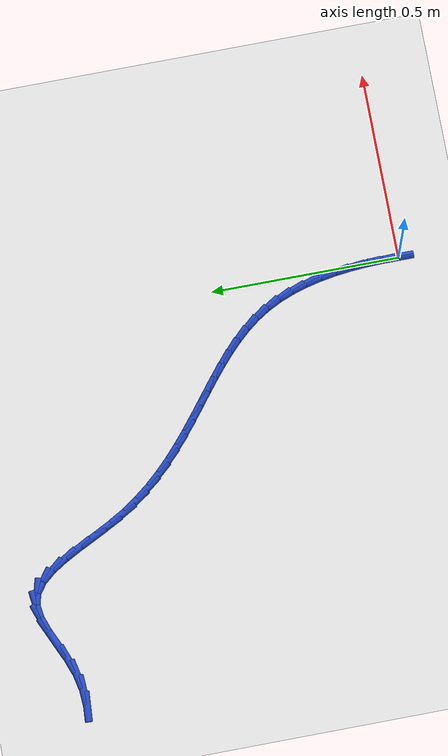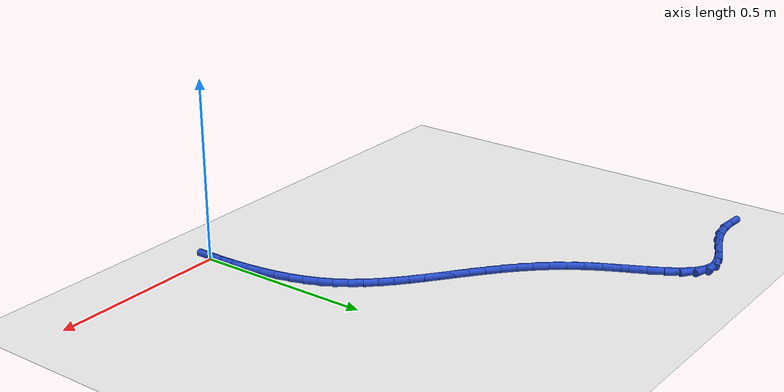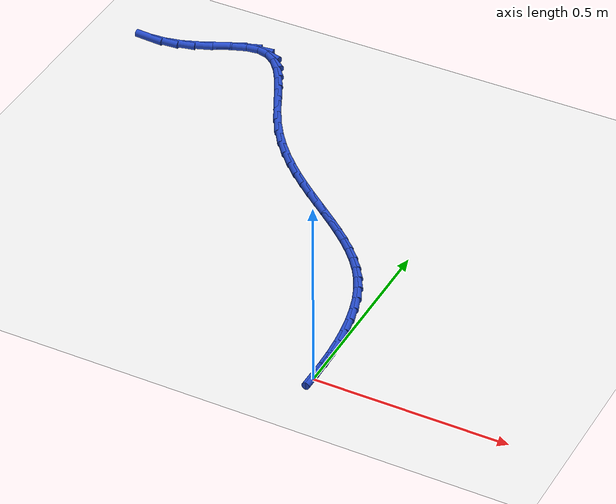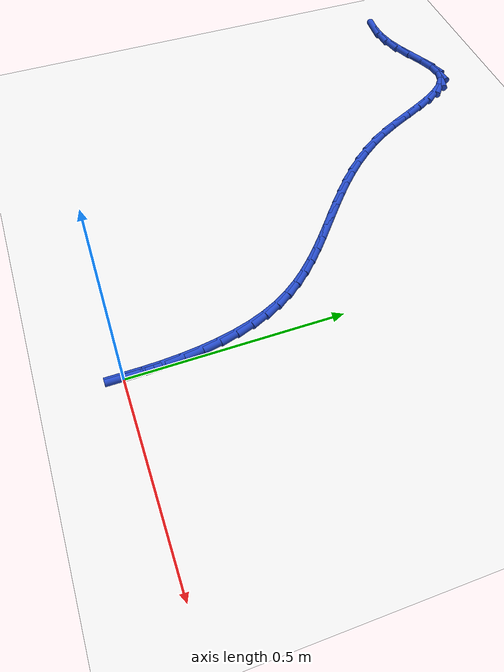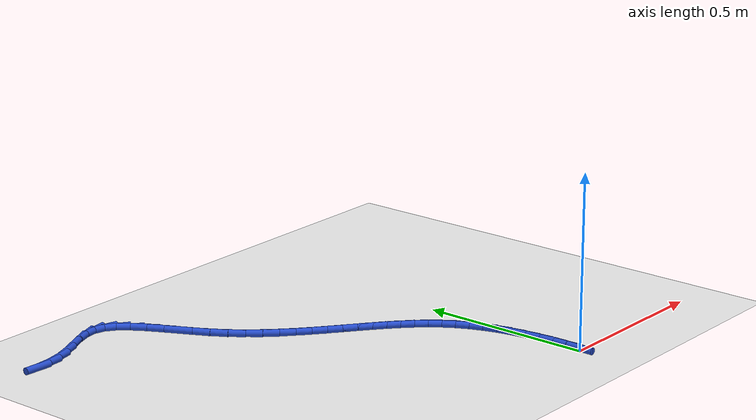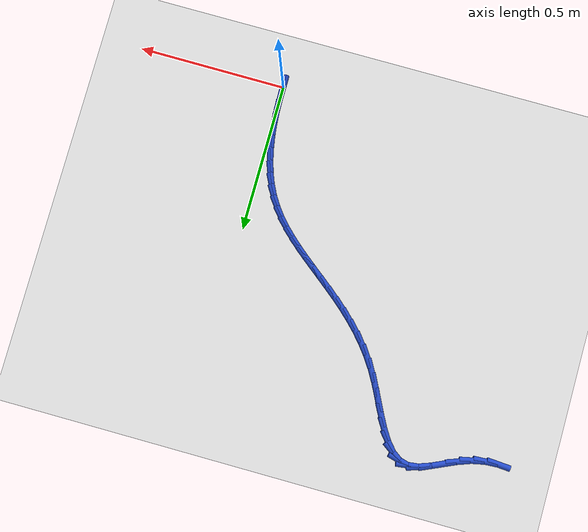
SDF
<sdf version="1.6">
 <world name="default">
  <model name="ground_plane">
   <static>1</static>
   <link name="link">
    <collision name="collision">
     <geometry><plane><normal>0 0 1</normal><size>100 100</size></plane></geometry>
     <surface><friction><ode><mu>100</mu><mu2>50</mu2></ode></friction></surface>
    </collision>
    <visual name="visual">
     <cast_shadows>0</cast_shadows>
     <geometry><plane><normal>0 0 1</normal><size>100 100</size></plane></geometry>
     <material>
      <script><uri>file://media/materials/scripts/gazebo.material</uri><name>Gazebo/WhiteGlow</name></script>
     </material>
    </visual>
   </link>
  </model>
  <model name="line">
   <link name="link_0">
    <pose>-2.0816681711721685e-17 -4.163336342344337e-17 0.01 0 1.57 1.5702405880663068</pose>
    <collision name="collision">
     <geometry><cylinder><radius>0.01</radius><length>0.08</length></cylinder></geometry>
    </collision>
    <visual name="visual">
     <material>
      <script><name>Gazebo/Blue</name><uri>file://media/materials/scripts/gazebo.material</uri></script>
     </material>
     <geometry><cylinder><radius>0.01</radius><length>0.08</length></cylinder></geometry>
    </visual>
   </link>
   <link name="link_1">
    <pose>2.4101611619804057e-05 0.04336859732587032 0.01 0 1.57 -1.5373935220403587</pose>
    <collision name="collision">
     <geometry><cylinder><radius>0.01</radius><length>0.08</length></cylinder></geometry>
    </collision>
    <visual name="visual">
     <material>
      <script><name>Gazebo/Blue</name><uri>file://media/materials/scripts/gazebo.material</uri></script>
     </material>
     <geometry><cylinder><radius>0.01</radius><length>0.08</length></cylinder></geometry>
    </visual>
   </link>
   <link name="link_2">
    <pose>-0.001427749246306789 0.08681736943247514 0.01 0 1.57 -1.4984947802838482</pose>
    <collision name="collision">
     <geometry><cylinder><radius>0.01</radius><length>0.08</length></cylinder></geometry>
    </collision>
    <visual name="visual">
     <material>
      <script><name>Gazebo/Blue</name><uri>file://media/materials/scripts/gazebo.material</uri></script>
     </material>
     <geometry><cylinder><radius>0.01</radius><length>0.08</length></cylinder></geometry>
    </visual>
   </link>
   <link name="link_3">
    <pose>-0.004556395814565118 0.13001413543887705 0.01 0 1.57 -1.4538486660586079</pose>
    <collision name="collision">
     <geometry><cylinder><radius>0.01</radius><length>0.08</length></cylinder></geometry>
    </collision>
    <visual name="visual">
     <material>
      <script><name>Gazebo/Blue</name><uri>file://media/materials/scripts/gazebo.material</uri></script>
     </material>
     <geometry><cylinder><radius>0.01</radius><length>0.08</length></cylinder></geometry>
    </visual>
   </link>
   <link name="link_4">
    <pose>-0.009562681333940507 0.1726267144641387 0.01 0 1.57 -1.4024898091452374</pose>
    <collision name="collision">
     <geometry><cylinder><radius>0.01</radius><length>0.08</length></cylinder></geometry>
    </collision>
    <visual name="visual">
     <material>
      <script><name>Gazebo/Blue</name><uri>file://media/materials/scripts/gazebo.material</uri></script>
     </material>
     <geometry><cylinder><radius>0.01</radius><length>0.08</length></cylinder></geometry>
    </visual>
   </link>
   <link name="link_5">
    <pose>-0.016647449045218282 0.2143229256273228 0.01 0 1.57 -1.343292992065598</pose>
    <collision name="collision">
     <geometry><cylinder><radius>0.01</radius><length>0.08</length></cylinder></geometry>
    </collision>
    <visual name="visual">
     <material>
      <script><name>Gazebo/Blue</name><uri>file://media/materials/scripts/gazebo.material</uri></script>
     </material>
     <geometry><cylinder><radius>0.01</radius><length>0.08</length></cylinder></geometry>
    </visual>
   </link>
   <link name="link_6">
    <pose>-0.02601154218918376 0.254770588047492 0.01 0 1.57 -1.274997714693162</pose>
    <collision name="collision">
     <geometry><cylinder><radius>0.01</radius><length>0.08</length></cylinder></geometry>
    </collision>
    <visual name="visual">
     <material>
      <script><name>Gazebo/Blue</name><uri>file://media/materials/scripts/gazebo.material</uri></script>
     </material>
     <geometry><cylinder><radius>0.01</radius><length>0.08</length></cylinder></geometry>
    </visual>
   </link>
   <link name="link_7">
    <pose>-0.03785580400662226 0.2936375208437088 0.01 0 1.57 -1.196284041089661</pose>
    <collision name="collision">
     <geometry><cylinder><radius>0.01</radius><length>0.08</length></cylinder></geometry>
    </collision>
    <visual name="visual">
     <material>
      <script><name>Gazebo/Blue</name><uri>file://media/materials/scripts/gazebo.material</uri></script>
     </material>
     <geometry><cylinder><radius>0.01</radius><length>0.08</length></cylinder></geometry>
    </visual>
   </link>
   <link name="link_8">
    <pose>-0.052381077738319105 0.33059154313503614 0.01 0 1.57 -1.1059415740129674</pose>
    <collision name="collision">
     <geometry><cylinder><radius>0.01</radius><length>0.08</length></cylinder></geometry>
    </collision>
    <visual name="visual">
     <material>
      <script><name>Gazebo/Blue</name><uri>file://media/materials/scripts/gazebo.material</uri></script>
     </material>
     <geometry><cylinder><radius>0.01</radius><length>0.08</length></cylinder></geometry>
    </visual>
   </link>
   <link name="link_9">
    <pose>-0.0697880516994772 0.36530068044756714 0.01 0 1.57 -1.0081884148373188</pose>
    <collision name="collision">
     <geometry><cylinder><radius>0.01</radius><length>0.08</length></cylinder></geometry>
    </collision>
    <visual name="visual">
     <material>
      <script><name>Gazebo/Blue</name><uri>file://media/materials/scripts/gazebo.material</uri></script>
     </material>
     <geometry><cylinder><radius>0.01</radius><length>0.08</length></cylinder></geometry>
    </visual>
   </link>
   <link name="link_10">
    <pose>-0.09015398931109625 0.39759739703677704 0.01 0 1.57 -0.918357097890116</pose>
    <collision name="collision">
     <geometry><cylinder><radius>0.01</radius><length>0.08</length></cylinder></geometry>
    </collision>
    <visual name="visual">
     <material>
      <script><name>Gazebo/Blue</name><uri>file://media/materials/scripts/gazebo.material</uri></script>
     </material>
     <geometry><cylinder><radius>0.01</radius><length>0.08</length></cylinder></geometry>
    </visual>
   </link>
   <link name="link_11">
    <pose>-0.11321087206196469 0.42777417555700514 0.01 0 1.57 -0.8412233249746979</pose>
    <collision name="collision">
     <geometry><cylinder><radius>0.01</radius><length>0.08</length></cylinder></geometry>
    </collision>
    <visual name="visual">
     <material>
      <script><name>Gazebo/Blue</name><uri>file://media/materials/scripts/gazebo.material</uri></script>
     </material>
     <geometry><cylinder><radius>0.01</radius><length>0.08</length></cylinder></geometry>
    </visual>
   </link>
   <link name="link_12">
    <pose>-0.1386307643505817 0.45620332607714176 0.01 0 1.57 -0.7780392341299396</pose>
    <collision name="collision">
     <geometry><cylinder><radius>0.01</radius><length>0.08</length></cylinder></geometry>
    </collision>
    <visual name="visual">
     <material>
      <script><name>Gazebo/Blue</name><uri>file://media/materials/scripts/gazebo.material</uri></script>
     </material>
     <geometry><cylinder><radius>0.01</radius><length>0.08</length></cylinder></geometry>
    </visual>
   </link>
   <link name="link_13">
    <pose>-0.16608573057544626 0.483257158666077 0.01 0 1.57 -0.7291071286449811</pose>
    <collision name="collision">
     <geometry><cylinder><radius>0.01</radius><length>0.08</length></cylinder></geometry>
    </collision>
    <visual name="visual">
     <material>
      <script><name>Gazebo/Blue</name><uri>file://media/materials/scripts/gazebo.material</uri></script>
     </material>
     <geometry><cylinder><radius>0.01</radius><length>0.08</length></cylinder></geometry>
    </visual>
   </link>
   <link name="link_14">
    <pose>-0.19524783513505736 0.5093079833927008 0.01 0 1.57 -0.6941396754114768</pose>
    <collision name="collision">
     <geometry><cylinder><radius>0.01</radius><length>0.08</length></cylinder></geometry>
    </collision>
    <visual name="visual">
     <material>
      <script><name>Gazebo/Blue</name><uri>file://media/materials/scripts/gazebo.material</uri></script>
     </material>
     <geometry><cylinder><radius>0.01</radius><length>0.08</length></cylinder></geometry>
    </visual>
   </link>
   <link name="link_15">
    <pose>-0.22578914242791417 0.5347281103259036 0.01 0 1.57 -0.6725693280413313</pose>
    <collision name="collision">
     <geometry><cylinder><radius>0.01</radius><length>0.08</length></cylinder></geometry>
    </collision>
    <visual name="visual">
     <material>
      <script><name>Gazebo/Blue</name><uri>file://media/materials/scripts/gazebo.material</uri></script>
     </material>
     <geometry><cylinder><radius>0.01</radius><length>0.08</length></cylinder></geometry>
    </visual>
   </link>
   <link name="link_16">
    <pose>-0.25738171685251576 0.5598898495345754 0.01 0 1.57 -0.663757326702378</pose>
    <collision name="collision">
     <geometry><cylinder><radius>0.01</radius><length>0.08</length></cylinder></geometry>
    </collision>
    <visual name="visual">
     <material>
      <script><name>Gazebo/Blue</name><uri>file://media/materials/scripts/gazebo.material</uri></script>
     </material>
     <geometry><cylinder><radius>0.01</radius><length>0.08</length></cylinder></geometry>
    </visual>
   </link>
   <link name="link_17">
    <pose>-0.28969762280736117 0.5851655110876065 0.01 0 1.57 -0.6671052822627369</pose>
    <collision name="collision">
     <geometry><cylinder><radius>0.01</radius><length>0.08</length></cylinder></geometry>
    </collision>
    <visual name="visual">
     <material>
      <script><name>Gazebo/Blue</name><uri>file://media/materials/scripts/gazebo.material</uri></script>
     </material>
     <geometry><cylinder><radius>0.01</radius><length>0.08</length></cylinder></geometry>
    </visual>
   </link>
   <link name="link_18">
    <pose>-0.32240892469094934 0.610927405053887 0.01 0 1.57 -0.6820903403879932</pose>
    <collision name="collision">
     <geometry><cylinder><radius>0.01</radius><length>0.08</length></cylinder></geometry>
    </collision>
    <visual name="visual">
     <material>
      <script><name>Gazebo/Blue</name><uri>file://media/materials/scripts/gazebo.material</uri></script>
     </material>
     <geometry><cylinder><radius>0.01</radius><length>0.08</length></cylinder></geometry>
    </visual>
   </link>
   <link name="link_19">
    <pose>-0.3551876869017795 0.6375478415023073 0.01 0 1.57 -0.7082445012371428</pose>
    <collision name="collision">
     <geometry><cylinder><radius>0.01</radius><length>0.08</length></cylinder></geometry>
    </collision>
    <visual name="visual">
     <material>
      <script><name>Gazebo/Blue</name><uri>file://media/materials/scripts/gazebo.material</uri></script>
     </material>
     <geometry><cylinder><radius>0.01</radius><length>0.08</length></cylinder></geometry>
    </visual>
   </link>
   <link name="link_20">
    <pose>-0.3877059738383508 0.6653991305017571 0.01 0 1.57 -0.7450933500096423</pose>
    <collision name="collision">
     <geometry><cylinder><radius>0.01</radius><length>0.08</length></cylinder></geometry>
    </collision>
    <visual name="visual">
     <material>
      <script><name>Gazebo/Blue</name><uri>file://media/materials/scripts/gazebo.material</uri></script>
     </material>
     <geometry><cylinder><radius>0.01</radius><length>0.08</length></cylinder></geometry>
    </visual>
   </link>
   <link name="link_21">
    <pose>-0.41963584989916203 0.694853582121127 0.01 0 1.57 -0.7920664132606304</pose>
    <collision name="collision">
     <geometry><cylinder><radius>0.01</radius><length>0.08</length></cylinder></geometry>
    </collision>
    <visual name="visual">
     <material>
      <script><name>Gazebo/Blue</name><uri>file://media/materials/scripts/gazebo.material</uri></script>
     </material>
     <geometry><cylinder><radius>0.01</radius><length>0.08</length></cylinder></geometry>
    </visual>
   </link>
   <link name="link_22">
    <pose>-0.45064937948271205 0.7262835064293065 0.01 0 1.57 -0.8483934051655299</pose>
    <collision name="collision">
     <geometry><cylinder><radius>0.01</radius><length>0.08</length></cylinder></geometry>
    </collision>
    <visual name="visual">
     <material>
      <script><name>Gazebo/Blue</name><uri>file://media/materials/scripts/gazebo.material</uri></script>
     </material>
     <geometry><cylinder><radius>0.01</radius><length>0.08</length></cylinder></geometry>
    </visual>
   </link>
   <link name="link_23">
    <pose>-0.4804186269875006 0.7600612134951867 0.01 0 1.57 -0.9130074969552721</pose>
    <collision name="collision">
     <geometry><cylinder><radius>0.01</radius><length>0.08</length></cylinder></geometry>
    </collision>
    <visual name="visual">
     <material>
      <script><name>Gazebo/Blue</name><uri>file://media/materials/scripts/gazebo.material</uri></script>
     </material>
     <geometry><cylinder><radius>0.01</radius><length>0.08</length></cylinder></geometry>
    </visual>
   </link>
   <link name="link_24">
    <pose>-0.5086156568120264 0.7965590133876577 0.01 0 1.57 -0.9844847147053257</pose>
    <collision name="collision">
     <geometry><cylinder><radius>0.01</radius><length>0.08</length></cylinder></geometry>
    </collision>
    <visual name="visual">
     <material>
      <script><name>Gazebo/Blue</name><uri>file://media/materials/scripts/gazebo.material</uri></script>
     </material>
     <geometry><cylinder><radius>0.01</radius><length>0.08</length></cylinder></geometry>
    </visual>
   </link>
   <link name="link_25">
    <pose>-0.5349125333547884 0.8361492161756088 0.01 0 1.57 -1.056377052260185</pose>
    <collision name="collision">
     <geometry><cylinder><radius>0.01</radius><length>0.08</length></cylinder></geometry>
    </collision>
    <visual name="visual">
     <material>
      <script><name>Gazebo/Blue</name><uri>file://media/materials/scripts/gazebo.material</uri></script>
     </material>
     <geometry><cylinder><radius>0.01</radius><length>0.08</length></cylinder></geometry>
    </visual>
   </link>
   <link name="link_26">
    <pose>-0.5590979915514123 0.8789420735021811 0.01 0 1.57 -1.1002546652539384</pose>
    <collision name="collision">
     <geometry><cylinder><radius>0.01</radius><length>0.08</length></cylinder></geometry>
    </collision>
    <visual name="visual">
     <material>
      <script><name>Gazebo/Blue</name><uri>file://media/materials/scripts/gazebo.material</uri></script>
     </material>
     <geometry><cylinder><radius>0.01</radius><length>0.08</length></cylinder></geometry>
    </visual>
   </link>
   <link name="link_27">
    <pose>-0.581702335370363 0.9233821687268409 0.01 0 1.57 -1.1088985701030307</pose>
    <collision name="collision">
     <geometry><cylinder><radius>0.01</radius><length>0.08</length></cylinder></geometry>
    </collision>
    <visual name="visual">
     <material>
      <script><name>Gazebo/Blue</name><uri>file://media/materials/scripts/gazebo.material</uri></script>
     </material>
     <geometry><cylinder><radius>0.01</radius><length>0.08</length></cylinder></geometry>
    </visual>
   </link>
   <link name="link_28">
    <pose>-0.6035462642569058 0.9672618161497943 0.01 0 1.57 -1.0812261580175133</pose>
    <collision name="collision">
     <geometry><cylinder><radius>0.01</radius><length>0.08</length></cylinder></geometry>
    </collision>
    <visual name="visual">
     <material>
      <script><name>Gazebo/Blue</name><uri>file://media/materials/scripts/gazebo.material</uri></script>
     </material>
     <geometry><cylinder><radius>0.01</radius><length>0.08</length></cylinder></geometry>
    </visual>
   </link>
   <link name="link_29">
    <pose>-0.6254511547932186 1.0083718091265603 0.01 0 1.57 -1.0081220190441231</pose>
    <collision name="collision">
     <geometry><cylinder><radius>0.01</radius><length>0.08</length></cylinder></geometry>
    </collision>
    <visual name="visual">
     <material>
      <script><name>Gazebo/Blue</name><uri>file://media/materials/scripts/gazebo.material</uri></script>
     </material>
     <geometry><cylinder><radius>0.01</radius><length>0.08</length></cylinder></geometry>
    </visual>
   </link>
   <link name="link_30">
    <pose>-0.6482383835614794 1.0445029410126594 0.01 0 1.57 -0.8685261361282299</pose>
    <collision name="collision">
     <geometry><cylinder><radius>0.01</radius><length>0.08</length></cylinder></geometry>
    </collision>
    <visual name="visual">
     <material>
      <script><name>Gazebo/Blue</name><uri>file://media/materials/scripts/gazebo.material</uri></script>
     </material>
     <geometry><cylinder><radius>0.01</radius><length>0.08</length></cylinder></geometry>
    </visual>
   </link>
   <link name="link_31">
    <pose>-0.6727293271438661 1.0734460051636106 0.01 0 1.57 -0.6263167182668777</pose>
    <collision name="collision">
     <geometry><cylinder><radius>0.01</radius><length>0.08</length></cylinder></geometry>
    </collision>
    <visual name="visual">
     <material>
      <script><name>Gazebo/Blue</name><uri>file://media/materials/scripts/gazebo.material</uri></script>
     </material>
     <geometry><cylinder><radius>0.01</radius><length>0.08</length></cylinder></geometry>
    </visual>
   </link>
   <link name="link_32">
    <pose>-0.6997453621225573 1.092991794934934 0.01 0 1.57 -0.2558869594768532</pose>
    <collision name="collision">
     <geometry><cylinder><radius>0.01</radius><length>0.08</length></cylinder></geometry>
    </collision>
    <visual name="visual">
     <material>
      <script><name>Gazebo/Blue</name><uri>file://media/materials/scripts/gazebo.material</uri></script>
     </material>
     <geometry><cylinder><radius>0.01</radius><length>0.08</length></cylinder></geometry>
    </visual>
   </link>
   <link name="link_33">
    <pose>-0.7301069069934344 1.100935049722213 0.01 0 1.57 0.12470405745999866</pose>
    <collision name="collision">
     <geometry><cylinder><radius>0.01</radius><length>0.08</length></cylinder></geometry>
    </collision>
    <visual name="visual">
     <material>
      <script><name>Gazebo/Blue</name><uri>file://media/materials/scripts/gazebo.material</uri></script>
     </material>
     <geometry><cylinder><radius>0.01</radius><length>0.08</length></cylinder></geometry>
    </visual>
   </link>
   <link name="link_34">
    <pose>-0.7642496458045249 1.096655102660111 0.01 0 1.57 0.3375328449752318</pose>
    <collision name="collision">
     <geometry><cylinder><radius>0.01</radius><length>0.08</length></cylinder></geometry>
    </collision>
    <visual name="visual">
     <material>
      <script><name>Gazebo/Blue</name><uri>file://media/materials/scripts/gazebo.material</uri></script>
     </material>
     <geometry><cylinder><radius>0.01</radius><length>0.08</length></cylinder></geometry>
    </visual>
   </link>
   <link name="link_35">
    <pose>-0.8016375854017671 1.0835333033895214 0.01 0 1.57 0.42253069600633086</pose>
    <collision name="collision">
     <geometry><cylinder><radius>0.01</radius><length>0.08</length></cylinder></geometry>
    </collision>
    <visual name="visual">
     <material>
      <script><name>Gazebo/Blue</name><uri>file://media/materials/scripts/gazebo.material</uri></script>
     </material>
     <geometry><cylinder><radius>0.01</radius><length>0.08</length></cylinder></geometry>
    </visual>
   </link>
   <link name="link_36">
    <pose>-0.8415836942596983 1.065573078568401 0.01 0 1.57 0.42240564750308596</pose>
    <collision name="collision">
     <geometry><cylinder><radius>0.01</radius><length>0.08</length></cylinder></geometry>
    </collision>
    <visual name="visual">
     <material>
      <script><name>Gazebo/Blue</name><uri>file://media/materials/scripts/gazebo.material</uri></script>
     </material>
     <geometry><cylinder><radius>0.01</radius><length>0.08</length></cylinder></geometry>
    </visual>
   </link>
   <link name="link_37">
    <pose>-0.8834009408528556 1.0467778548547073 0.01 0 1.57 0.34856437198829776</pose>
    <collision name="collision">
     <geometry><cylinder><radius>0.01</radius><length>0.08</length></cylinder></geometry>
    </collision>
    <visual name="visual">
     <material>
      <script><name>Gazebo/Blue</name><uri>file://media/materials/scripts/gazebo.material</uri></script>
     </material>
     <geometry><cylinder><radius>0.01</radius><length>0.08</length></cylinder></geometry>
    </visual>
   </link>
   <link name="link_38">
    <pose>-0.9264022936557758 1.0311510589063975 0.01 0 1.57 0.2041113422869888</pose>
    <collision name="collision">
     <geometry><cylinder><radius>0.01</radius><length>0.08</length></cylinder></geometry>
    </collision>
    <visual name="visual">
     <material>
      <script><name>Gazebo/Blue</name><uri>file://media/materials/scripts/gazebo.material</uri></script>
     </material>
     <geometry><cylinder><radius>0.01</radius><length>0.08</length></cylinder></geometry>
    </visual>
   </link>
   <link name="link_39">
    <pose>-0.9699560365664643 1.0221356992442234 0.01 0 1.57 0.053309065515965266</pose>
    <collision name="collision">
     <geometry><cylinder><radius>0.01</radius><length>0.08</length></cylinder></geometry>
    </collision>
    <visual name="visual">
     <material>
      <script><name>Gazebo/Blue</name><uri>file://media/materials/scripts/gazebo.material</uri></script>
     </material>
     <geometry><cylinder><radius>0.01</radius><length>0.08</length></cylinder></geometry>
    </visual>
   </link>
   <link name="link_40">
    <pose>-1.013763741587224 1.0197981366684248 0.01 0 1.57 -0.07160802732899497</pose>
    <collision name="collision">
     <geometry><cylinder><radius>0.01</radius><length>0.08</length></cylinder></geometry>
    </collision>
    <visual name="visual">
     <material>
      <script><name>Gazebo/Blue</name><uri>file://media/materials/scripts/gazebo.material</uri></script>
     </material>
     <geometry><cylinder><radius>0.01</radius><length>0.08</length></cylinder></geometry>
    </visual>
   </link>
   <link name="link_170">
    <pose>-1.474514954580286e-17 1.1102230246251565e-16 0.01 0 1.57 1.569105303746227</pose>
    <collision name="collision">
     <geometry><cylinder><radius>0.01</radius><length>0.08</length></cylinder></geometry>
    </collision>
    <visual name="visual">
     <material>
      <script><name>Gazebo/Blue</name><uri>file://media/materials/scripts/gazebo.material</uri></script>
     </material>
     <geometry><cylinder><radius>0.01</radius><length>0.08</length></cylinder></geometry>
    </visual>
   </link>
   <link name="link_171">
    <pose>7.341589884105482e-05 0.0434150373762131 0.01 0 1.57 1.569105303746227</pose>
    <collision name="collision">
     <geometry><cylinder><radius>0.01</radius><length>0.08</length></cylinder></geometry>
    </collision>
    <visual name="visual">
     <material>
      <script><name>Gazebo/Blue</name><uri>file://media/materials/scripts/gazebo.material</uri></script>
     </material>
     <geometry><cylinder><radius>0.01</radius><length>0.08</length></cylinder></geometry>
    </visual>
   </link>
  </model>
 </world>
</sdf>
